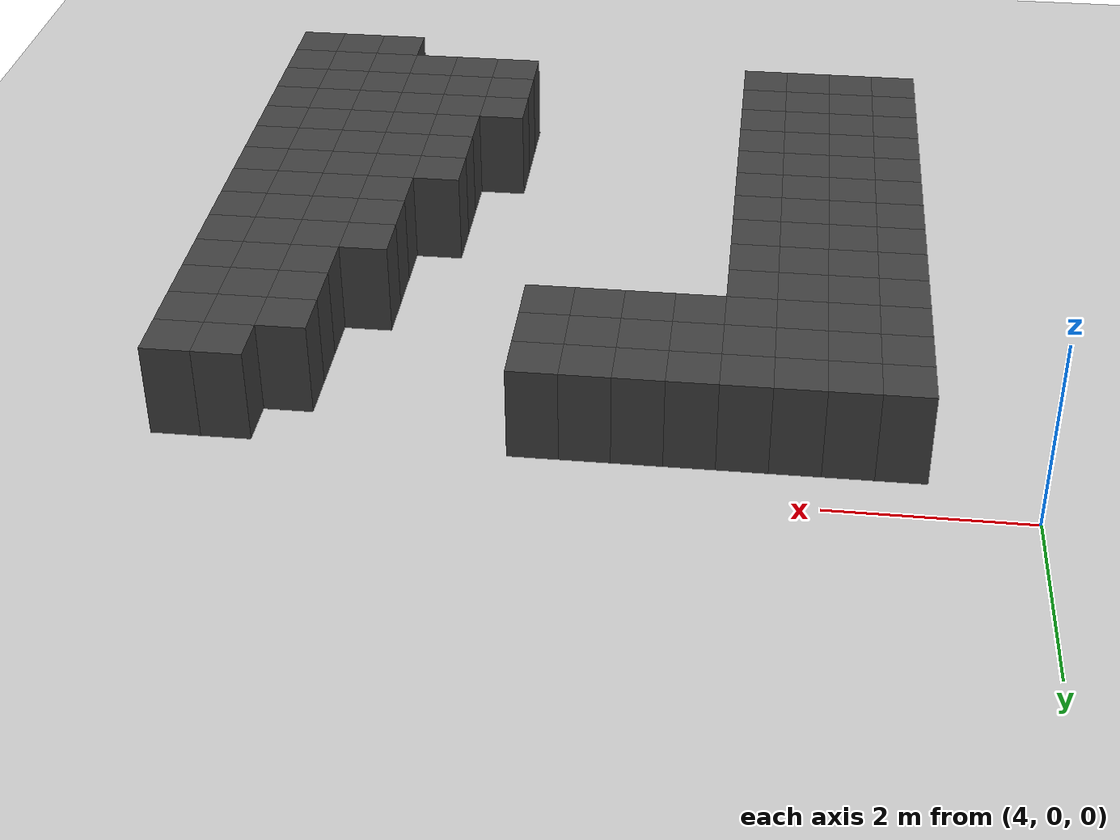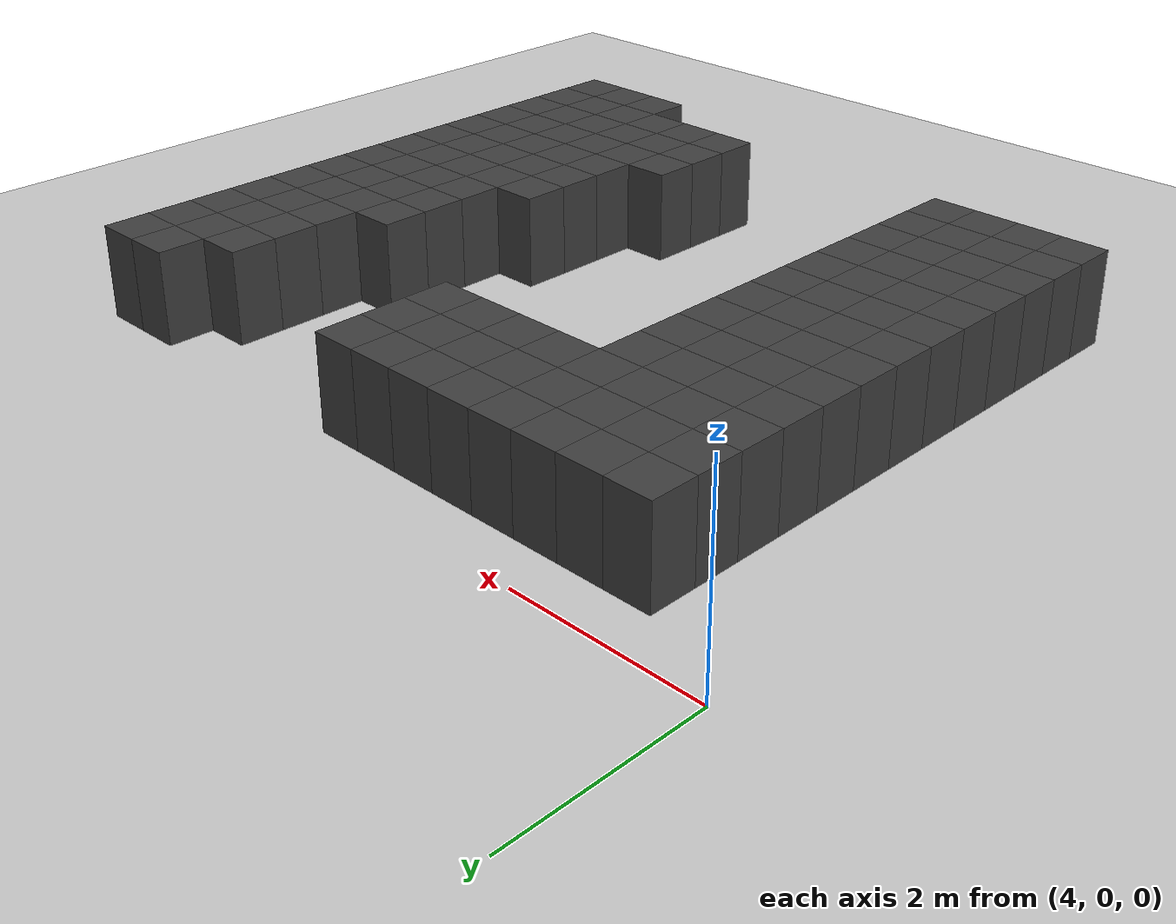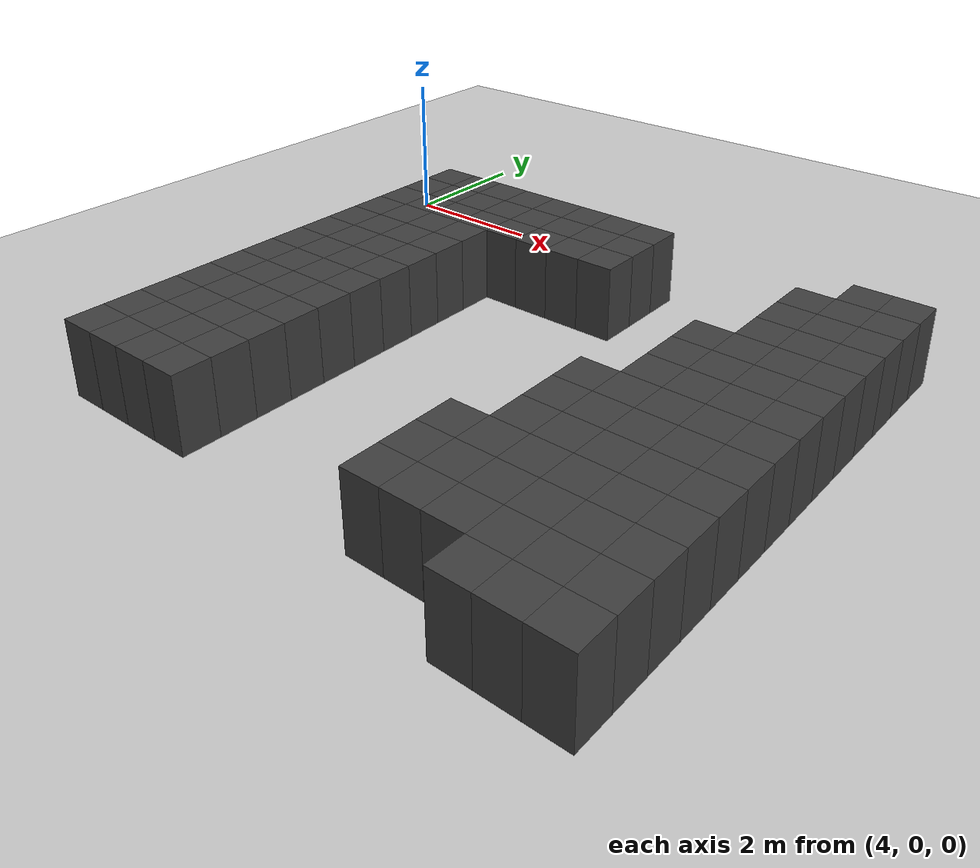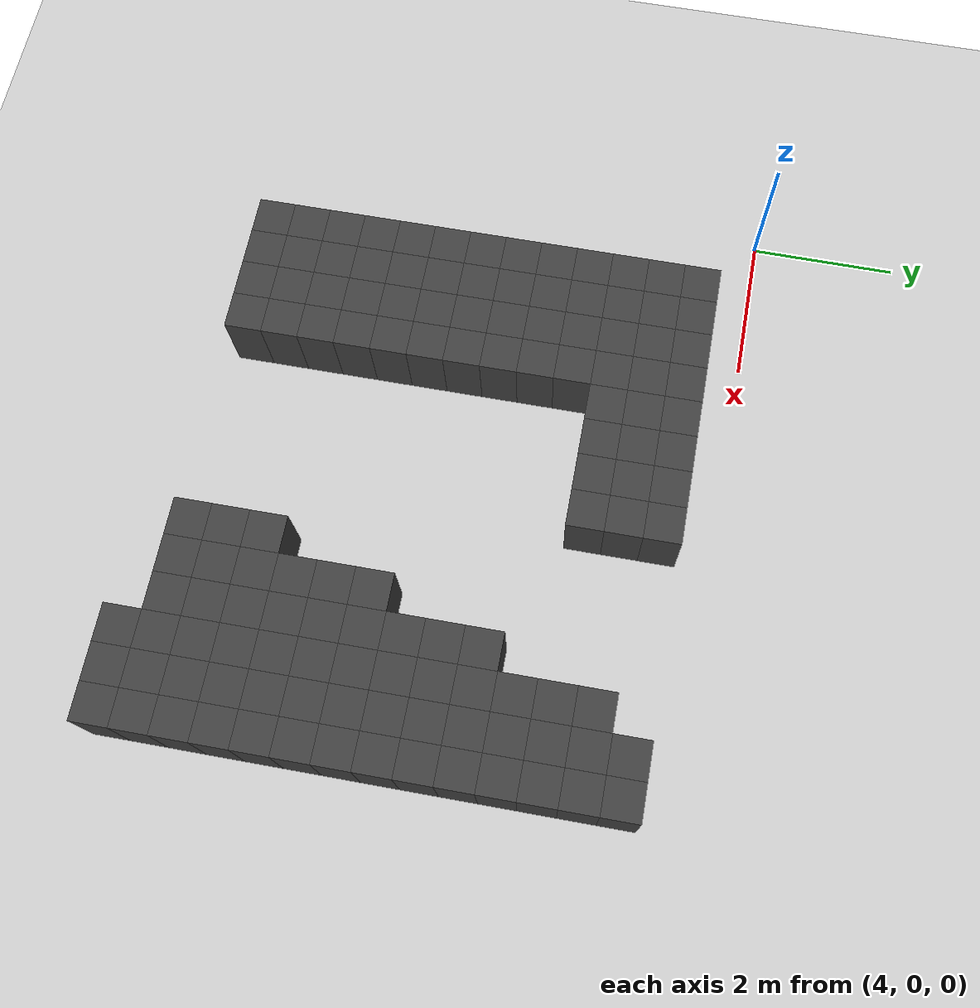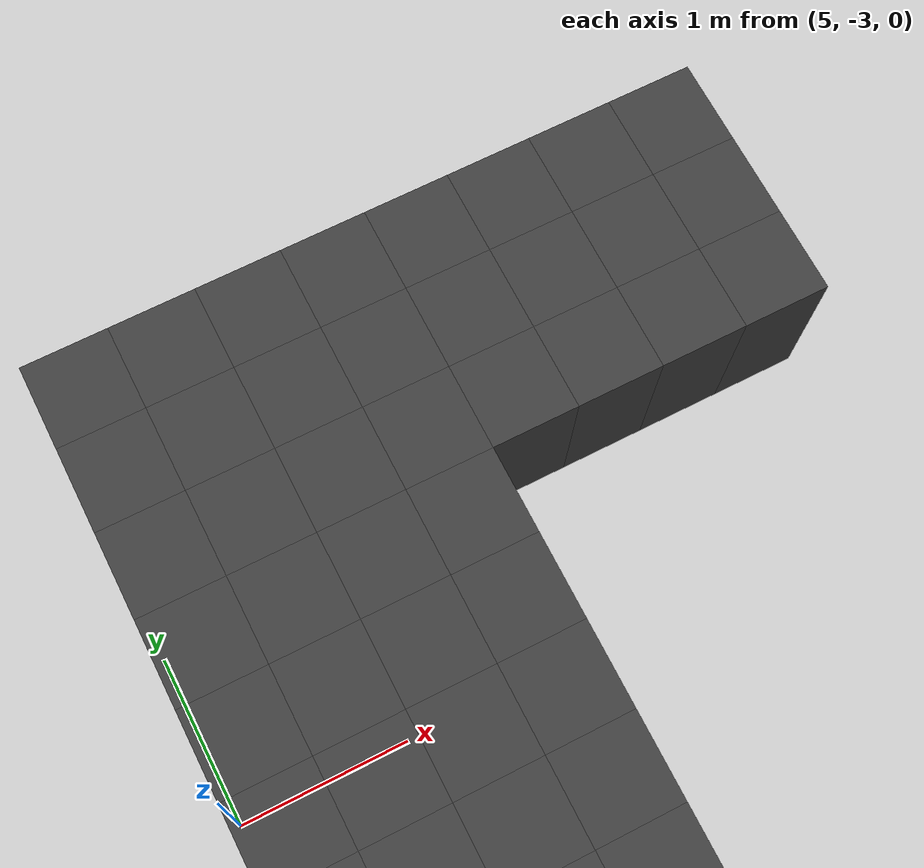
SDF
<sdf version="1.7">
 <world name="map_14074">
  <model name="ground_plane">
   <static>true</static>
   <link name="link">
    <collision name="collision">
     <geometry><plane><normal>0 0 1</normal><size>200 200</size></plane></geometry>
    </collision>
    <visual name="visual">
     <geometry><plane><normal>0 0 1</normal><size>200 200</size></plane></geometry>
     <material><ambient>0.8 0.8 0.8 1</ambient><diffuse>0.8 0.8 0.8 1</diffuse></material>
    </visual>
   </link>
  </model>
  <model name="maze_environment">
   <static>true</static>
   <link name="wall_1053">
    <pose>5.250 -0.750 0.500 0 0 0</pose>
    <collision name="col"><geometry><box><size>0.5 0.5 1.0</size></box></geometry></collision>
    <visual name="vis">
     <geometry><box><size>0.5 0.5 1.0</size></box></geometry>
     <material><ambient>0.15 0.15 0.15 1</ambient><diffuse>0.25 0.25 0.25 1</diffuse></material>
    </visual>
   </link>
   <link name="wall_1054">
    <pose>5.750 -0.750 0.500 0 0 0</pose>
    <collision name="col"><geometry><box><size>0.5 0.5 1.0</size></box></geometry></collision>
    <visual name="vis">
     <geometry><box><size>0.5 0.5 1.0</size></box></geometry>
     <material><ambient>0.15 0.15 0.15 1</ambient><diffuse>0.25 0.25 0.25 1</diffuse></material>
    </visual>
   </link>
   <link name="wall_1055">
    <pose>6.250 -0.750 0.500 0 0 0</pose>
    <collision name="col"><geometry><box><size>0.5 0.5 1.0</size></box></geometry></collision>
    <visual name="vis">
     <geometry><box><size>0.5 0.5 1.0</size></box></geometry>
     <material><ambient>0.15 0.15 0.15 1</ambient><diffuse>0.25 0.25 0.25 1</diffuse></material>
    </visual>
   </link>
   <link name="wall_1056">
    <pose>6.750 -0.750 0.500 0 0 0</pose>
    <collision name="col"><geometry><box><size>0.5 0.5 1.0</size></box></geometry></collision>
    <visual name="vis">
     <geometry><box><size>0.5 0.5 1.0</size></box></geometry>
     <material><ambient>0.15 0.15 0.15 1</ambient><diffuse>0.25 0.25 0.25 1</diffuse></material>
    </visual>
   </link>
   <link name="wall_1057">
    <pose>7.250 -0.750 0.500 0 0 0</pose>
    <collision name="col"><geometry><box><size>0.5 0.5 1.0</size></box></geometry></collision>
    <visual name="vis">
     <geometry><box><size>0.5 0.5 1.0</size></box></geometry>
     <material><ambient>0.15 0.15 0.15 1</ambient><diffuse>0.25 0.25 0.25 1</diffuse></material>
    </visual>
   </link>
   <link name="wall_1058">
    <pose>7.750 -0.750 0.500 0 0 0</pose>
    <collision name="col"><geometry><box><size>0.5 0.5 1.0</size></box></geometry></collision>
    <visual name="vis">
     <geometry><box><size>0.5 0.5 1.0</size></box></geometry>
     <material><ambient>0.15 0.15 0.15 1</ambient><diffuse>0.25 0.25 0.25 1</diffuse></material>
    </visual>
   </link>
   <link name="wall_1059">
    <pose>8.250 -0.750 0.500 0 0 0</pose>
    <collision name="col"><geometry><box><size>0.5 0.5 1.0</size></box></geometry></collision>
    <visual name="vis">
     <geometry><box><size>0.5 0.5 1.0</size></box></geometry>
     <material><ambient>0.15 0.15 0.15 1</ambient><diffuse>0.25 0.25 0.25 1</diffuse></material>
    </visual>
   </link>
   <link name="wall_1060">
    <pose>8.750 -0.750 0.500 0 0 0</pose>
    <collision name="col"><geometry><box><size>0.5 0.5 1.0</size></box></geometry></collision>
    <visual name="vis">
     <geometry><box><size>0.5 0.5 1.0</size></box></geometry>
     <material><ambient>0.15 0.15 0.15 1</ambient><diffuse>0.25 0.25 0.25 1</diffuse></material>
    </visual>
   </link>
   <link name="wall_1061">
    <pose>11.750 -0.750 0.500 0 0 0</pose>
    <collision name="col"><geometry><box><size>0.5 0.5 1.0</size></box></geometry></collision>
    <visual name="vis">
     <geometry><box><size>0.5 0.5 1.0</size></box></geometry>
     <material><ambient>0.15 0.15 0.15 1</ambient><diffuse>0.25 0.25 0.25 1</diffuse></material>
    </visual>
   </link>
   <link name="wall_1062">
    <pose>12.250 -0.750 0.500 0 0 0</pose>
    <collision name="col"><geometry><box><size>0.5 0.5 1.0</size></box></geometry></collision>
    <visual name="vis">
     <geometry><box><size>0.5 0.5 1.0</size></box></geometry>
     <material><ambient>0.15 0.15 0.15 1</ambient><diffuse>0.25 0.25 0.25 1</diffuse></material>
    </visual>
   </link>
   <link name="wall_1092">
    <pose>5.250 -1.250 0.500 0 0 0</pose>
    <collision name="col"><geometry><box><size>0.5 0.5 1.0</size></box></geometry></collision>
    <visual name="vis">
     <geometry><box><size>0.5 0.5 1.0</size></box></geometry>
     <material><ambient>0.15 0.15 0.15 1</ambient><diffuse>0.25 0.25 0.25 1</diffuse></material>
    </visual>
   </link>
   <link name="wall_1093">
    <pose>5.750 -1.250 0.500 0 0 0</pose>
    <collision name="col"><geometry><box><size>0.5 0.5 1.0</size></box></geometry></collision>
    <visual name="vis">
     <geometry><box><size>0.5 0.5 1.0</size></box></geometry>
     <material><ambient>0.15 0.15 0.15 1</ambient><diffuse>0.25 0.25 0.25 1</diffuse></material>
    </visual>
   </link>
   <link name="wall_1094">
    <pose>6.250 -1.250 0.500 0 0 0</pose>
    <collision name="col"><geometry><box><size>0.5 0.5 1.0</size></box></geometry></collision>
    <visual name="vis">
     <geometry><box><size>0.5 0.5 1.0</size></box></geometry>
     <material><ambient>0.15 0.15 0.15 1</ambient><diffuse>0.25 0.25 0.25 1</diffuse></material>
    </visual>
   </link>
   <link name="wall_1095">
    <pose>6.750 -1.250 0.500 0 0 0</pose>
    <collision name="col"><geometry><box><size>0.5 0.5 1.0</size></box></geometry></collision>
    <visual name="vis">
     <geometry><box><size>0.5 0.5 1.0</size></box></geometry>
     <material><ambient>0.15 0.15 0.15 1</ambient><diffuse>0.25 0.25 0.25 1</diffuse></material>
    </visual>
   </link>
   <link name="wall_1096">
    <pose>7.250 -1.250 0.500 0 0 0</pose>
    <collision name="col"><geometry><box><size>0.5 0.5 1.0</size></box></geometry></collision>
    <visual name="vis">
     <geometry><box><size>0.5 0.5 1.0</size></box></geometry>
     <material><ambient>0.15 0.15 0.15 1</ambient><diffuse>0.25 0.25 0.25 1</diffuse></material>
    </visual>
   </link>
   <link name="wall_1097">
    <pose>7.750 -1.250 0.500 0 0 0</pose>
    <collision name="col"><geometry><box><size>0.5 0.5 1.0</size></box></geometry></collision>
    <visual name="vis">
     <geometry><box><size>0.5 0.5 1.0</size></box></geometry>
     <material><ambient>0.15 0.15 0.15 1</ambient><diffuse>0.25 0.25 0.25 1</diffuse></material>
    </visual>
   </link>
   <link name="wall_1098">
    <pose>8.250 -1.250 0.500 0 0 0</pose>
    <collision name="col"><geometry><box><size>0.5 0.5 1.0</size></box></geometry></collision>
    <visual name="vis">
     <geometry><box><size>0.5 0.5 1.0</size></box></geometry>
     <material><ambient>0.15 0.15 0.15 1</ambient><diffuse>0.25 0.25 0.25 1</diffuse></material>
    </visual>
   </link>
   <link name="wall_1099">
    <pose>8.750 -1.250 0.500 0 0 0</pose>
    <collision name="col"><geometry><box><size>0.5 0.5 1.0</size></box></geometry></collision>
    <visual name="vis">
     <geometry><box><size>0.5 0.5 1.0</size></box></geometry>
     <material><ambient>0.15 0.15 0.15 1</ambient><diffuse>0.25 0.25 0.25 1</diffuse></material>
    </visual>
   </link>
   <link name="wall_1100">
    <pose>11.250 -1.250 0.500 0 0 0</pose>
    <collision name="col"><geometry><box><size>0.5 0.5 1.0</size></box></geometry></collision>
    <visual name="vis">
     <geometry><box><size>0.5 0.5 1.0</size></box></geometry>
     <material><ambient>0.15 0.15 0.15 1</ambient><diffuse>0.25 0.25 0.25 1</diffuse></material>
    </visual>
   </link>
   <link name="wall_1101">
    <pose>11.750 -1.250 0.500 0 0 0</pose>
    <collision name="col"><geometry><box><size>0.5 0.5 1.0</size></box></geometry></collision>
    <visual name="vis">
     <geometry><box><size>0.5 0.5 1.0</size></box></geometry>
     <material><ambient>0.15 0.15 0.15 1</ambient><diffuse>0.25 0.25 0.25 1</diffuse></material>
    </visual>
   </link>
   <link name="wall_1102">
    <pose>12.250 -1.250 0.500 0 0 0</pose>
    <collision name="col"><geometry><box><size>0.5 0.5 1.0</size></box></geometry></collision>
    <visual name="vis">
     <geometry><box><size>0.5 0.5 1.0</size></box></geometry>
     <material><ambient>0.15 0.15 0.15 1</ambient><diffuse>0.25 0.25 0.25 1</diffuse></material>
    </visual>
   </link>
   <link name="wall_1132">
    <pose>5.250 -1.750 0.500 0 0 0</pose>
    <collision name="col"><geometry><box><size>0.5 0.5 1.0</size></box></geometry></collision>
    <visual name="vis">
     <geometry><box><size>0.5 0.5 1.0</size></box></geometry>
     <material><ambient>0.15 0.15 0.15 1</ambient><diffuse>0.25 0.25 0.25 1</diffuse></material>
    </visual>
   </link>
   <link name="wall_1133">
    <pose>5.750 -1.750 0.500 0 0 0</pose>
    <collision name="col"><geometry><box><size>0.5 0.5 1.0</size></box></geometry></collision>
    <visual name="vis">
     <geometry><box><size>0.5 0.5 1.0</size></box></geometry>
     <material><ambient>0.15 0.15 0.15 1</ambient><diffuse>0.25 0.25 0.25 1</diffuse></material>
    </visual>
   </link>
   <link name="wall_1134">
    <pose>6.250 -1.750 0.500 0 0 0</pose>
    <collision name="col"><geometry><box><size>0.5 0.5 1.0</size></box></geometry></collision>
    <visual name="vis">
     <geometry><box><size>0.5 0.5 1.0</size></box></geometry>
     <material><ambient>0.15 0.15 0.15 1</ambient><diffuse>0.25 0.25 0.25 1</diffuse></material>
    </visual>
   </link>
   <link name="wall_1135">
    <pose>6.750 -1.750 0.500 0 0 0</pose>
    <collision name="col"><geometry><box><size>0.5 0.5 1.0</size></box></geometry></collision>
    <visual name="vis">
     <geometry><box><size>0.5 0.5 1.0</size></box></geometry>
     <material><ambient>0.15 0.15 0.15 1</ambient><diffuse>0.25 0.25 0.25 1</diffuse></material>
    </visual>
   </link>
   <link name="wall_1136">
    <pose>7.250 -1.750 0.500 0 0 0</pose>
    <collision name="col"><geometry><box><size>0.5 0.5 1.0</size></box></geometry></collision>
    <visual name="vis">
     <geometry><box><size>0.5 0.5 1.0</size></box></geometry>
     <material><ambient>0.15 0.15 0.15 1</ambient><diffuse>0.25 0.25 0.25 1</diffuse></material>
    </visual>
   </link>
   <link name="wall_1137">
    <pose>7.750 -1.750 0.500 0 0 0</pose>
    <collision name="col"><geometry><box><size>0.5 0.5 1.0</size></box></geometry></collision>
    <visual name="vis">
     <geometry><box><size>0.5 0.5 1.0</size></box></geometry>
     <material><ambient>0.15 0.15 0.15 1</ambient><diffuse>0.25 0.25 0.25 1</diffuse></material>
    </visual>
   </link>
   <link name="wall_1138">
    <pose>8.250 -1.750 0.500 0 0 0</pose>
    <collision name="col"><geometry><box><size>0.5 0.5 1.0</size></box></geometry></collision>
    <visual name="vis">
     <geometry><box><size>0.5 0.5 1.0</size></box></geometry>
     <material><ambient>0.15 0.15 0.15 1</ambient><diffuse>0.25 0.25 0.25 1</diffuse></material>
    </visual>
   </link>
   <link name="wall_1139">
    <pose>8.750 -1.750 0.500 0 0 0</pose>
    <collision name="col"><geometry><box><size>0.5 0.5 1.0</size></box></geometry></collision>
    <visual name="vis">
     <geometry><box><size>0.5 0.5 1.0</size></box></geometry>
     <material><ambient>0.15 0.15 0.15 1</ambient><diffuse>0.25 0.25 0.25 1</diffuse></material>
    </visual>
   </link>
   <link name="wall_1140">
    <pose>11.250 -1.750 0.500 0 0 0</pose>
    <collision name="col"><geometry><box><size>0.5 0.5 1.0</size></box></geometry></collision>
    <visual name="vis">
     <geometry><box><size>0.5 0.5 1.0</size></box></geometry>
     <material><ambient>0.15 0.15 0.15 1</ambient><diffuse>0.25 0.25 0.25 1</diffuse></material>
    </visual>
   </link>
   <link name="wall_1141">
    <pose>11.750 -1.750 0.500 0 0 0</pose>
    <collision name="col"><geometry><box><size>0.5 0.5 1.0</size></box></geometry></collision>
    <visual name="vis">
     <geometry><box><size>0.5 0.5 1.0</size></box></geometry>
     <material><ambient>0.15 0.15 0.15 1</ambient><diffuse>0.25 0.25 0.25 1</diffuse></material>
    </visual>
   </link>
   <link name="wall_1142">
    <pose>12.250 -1.750 0.500 0 0 0</pose>
    <collision name="col"><geometry><box><size>0.5 0.5 1.0</size></box></geometry></collision>
    <visual name="vis">
     <geometry><box><size>0.5 0.5 1.0</size></box></geometry>
     <material><ambient>0.15 0.15 0.15 1</ambient><diffuse>0.25 0.25 0.25 1</diffuse></material>
    </visual>
   </link>
   <link name="wall_1172">
    <pose>5.250 -2.250 0.500 0 0 0</pose>
    <collision name="col"><geometry><box><size>0.5 0.5 1.0</size></box></geometry></collision>
    <visual name="vis">
     <geometry><box><size>0.5 0.5 1.0</size></box></geometry>
     <material><ambient>0.15 0.15 0.15 1</ambient><diffuse>0.25 0.25 0.25 1</diffuse></material>
    </visual>
   </link>
   <link name="wall_1173">
    <pose>5.750 -2.250 0.500 0 0 0</pose>
    <collision name="col"><geometry><box><size>0.5 0.5 1.0</size></box></geometry></collision>
    <visual name="vis">
     <geometry><box><size>0.5 0.5 1.0</size></box></geometry>
     <material><ambient>0.15 0.15 0.15 1</ambient><diffuse>0.25 0.25 0.25 1</diffuse></material>
    </visual>
   </link>
   <link name="wall_1174">
    <pose>6.250 -2.250 0.500 0 0 0</pose>
    <collision name="col"><geometry><box><size>0.5 0.5 1.0</size></box></geometry></collision>
    <visual name="vis">
     <geometry><box><size>0.5 0.5 1.0</size></box></geometry>
     <material><ambient>0.15 0.15 0.15 1</ambient><diffuse>0.25 0.25 0.25 1</diffuse></material>
    </visual>
   </link>
   <link name="wall_1175">
    <pose>6.750 -2.250 0.500 0 0 0</pose>
    <collision name="col"><geometry><box><size>0.5 0.5 1.0</size></box></geometry></collision>
    <visual name="vis">
     <geometry><box><size>0.5 0.5 1.0</size></box></geometry>
     <material><ambient>0.15 0.15 0.15 1</ambient><diffuse>0.25 0.25 0.25 1</diffuse></material>
    </visual>
   </link>
   <link name="wall_1176">
    <pose>11.250 -2.250 0.500 0 0 0</pose>
    <collision name="col"><geometry><box><size>0.5 0.5 1.0</size></box></geometry></collision>
    <visual name="vis">
     <geometry><box><size>0.5 0.5 1.0</size></box></geometry>
     <material><ambient>0.15 0.15 0.15 1</ambient><diffuse>0.25 0.25 0.25 1</diffuse></material>
    </visual>
   </link>
   <link name="wall_1177">
    <pose>11.750 -2.250 0.500 0 0 0</pose>
    <collision name="col"><geometry><box><size>0.5 0.5 1.0</size></box></geometry></collision>
    <visual name="vis">
     <geometry><box><size>0.5 0.5 1.0</size></box></geometry>
     <material><ambient>0.15 0.15 0.15 1</ambient><diffuse>0.25 0.25 0.25 1</diffuse></material>
    </visual>
   </link>
   <link name="wall_1178">
    <pose>12.250 -2.250 0.500 0 0 0</pose>
    <collision name="col"><geometry><box><size>0.5 0.5 1.0</size></box></geometry></collision>
    <visual name="vis">
     <geometry><box><size>0.5 0.5 1.0</size></box></geometry>
     <material><ambient>0.15 0.15 0.15 1</ambient><diffuse>0.25 0.25 0.25 1</diffuse></material>
    </visual>
   </link>
   <link name="wall_1208">
    <pose>5.250 -2.750 0.500 0 0 0</pose>
    <collision name="col"><geometry><box><size>0.5 0.5 1.0</size></box></geometry></collision>
    <visual name="vis">
     <geometry><box><size>0.5 0.5 1.0</size></box></geometry>
     <material><ambient>0.15 0.15 0.15 1</ambient><diffuse>0.25 0.25 0.25 1</diffuse></material>
    </visual>
   </link>
   <link name="wall_1209">
    <pose>5.750 -2.750 0.500 0 0 0</pose>
    <collision name="col"><geometry><box><size>0.5 0.5 1.0</size></box></geometry></collision>
    <visual name="vis">
     <geometry><box><size>0.5 0.5 1.0</size></box></geometry>
     <material><ambient>0.15 0.15 0.15 1</ambient><diffuse>0.25 0.25 0.25 1</diffuse></material>
    </visual>
   </link>
   <link name="wall_1210">
    <pose>6.250 -2.750 0.500 0 0 0</pose>
    <collision name="col"><geometry><box><size>0.5 0.5 1.0</size></box></geometry></collision>
    <visual name="vis">
     <geometry><box><size>0.5 0.5 1.0</size></box></geometry>
     <material><ambient>0.15 0.15 0.15 1</ambient><diffuse>0.25 0.25 0.25 1</diffuse></material>
    </visual>
   </link>
   <link name="wall_1211">
    <pose>6.750 -2.750 0.500 0 0 0</pose>
    <collision name="col"><geometry><box><size>0.5 0.5 1.0</size></box></geometry></collision>
    <visual name="vis">
     <geometry><box><size>0.5 0.5 1.0</size></box></geometry>
     <material><ambient>0.15 0.15 0.15 1</ambient><diffuse>0.25 0.25 0.25 1</diffuse></material>
    </visual>
   </link>
   <link name="wall_1212">
    <pose>10.750 -2.750 0.500 0 0 0</pose>
    <collision name="col"><geometry><box><size>0.5 0.5 1.0</size></box></geometry></collision>
    <visual name="vis">
     <geometry><box><size>0.5 0.5 1.0</size></box></geometry>
     <material><ambient>0.15 0.15 0.15 1</ambient><diffuse>0.25 0.25 0.25 1</diffuse></material>
    </visual>
   </link>
   <link name="wall_1213">
    <pose>11.250 -2.750 0.500 0 0 0</pose>
    <collision name="col"><geometry><box><size>0.5 0.5 1.0</size></box></geometry></collision>
    <visual name="vis">
     <geometry><box><size>0.5 0.5 1.0</size></box></geometry>
     <material><ambient>0.15 0.15 0.15 1</ambient><diffuse>0.25 0.25 0.25 1</diffuse></material>
    </visual>
   </link>
   <link name="wall_1214">
    <pose>11.750 -2.750 0.500 0 0 0</pose>
    <collision name="col"><geometry><box><size>0.5 0.5 1.0</size></box></geometry></collision>
    <visual name="vis">
     <geometry><box><size>0.5 0.5 1.0</size></box></geometry>
     <material><ambient>0.15 0.15 0.15 1</ambient><diffuse>0.25 0.25 0.25 1</diffuse></material>
    </visual>
   </link>
   <link name="wall_1215">
    <pose>12.250 -2.750 0.500 0 0 0</pose>
    <collision name="col"><geometry><box><size>0.5 0.5 1.0</size></box></geometry></collision>
    <visual name="vis">
     <geometry><box><size>0.5 0.5 1.0</size></box></geometry>
     <material><ambient>0.15 0.15 0.15 1</ambient><diffuse>0.25 0.25 0.25 1</diffuse></material>
    </visual>
   </link>
   <link name="wall_1238">
    <pose>5.250 -3.250 0.500 0 0 0</pose>
    <collision name="col"><geometry><box><size>0.5 0.5 1.0</size></box></geometry></collision>
    <visual name="vis">
     <geometry><box><size>0.5 0.5 1.0</size></box></geometry>
     <material><ambient>0.15 0.15 0.15 1</ambient><diffuse>0.25 0.25 0.25 1</diffuse></material>
    </visual>
   </link>
   <link name="wall_1239">
    <pose>5.750 -3.250 0.500 0 0 0</pose>
    <collision name="col"><geometry><box><size>0.5 0.5 1.0</size></box></geometry></collision>
    <visual name="vis">
     <geometry><box><size>0.5 0.5 1.0</size></box></geometry>
     <material><ambient>0.15 0.15 0.15 1</ambient><diffuse>0.25 0.25 0.25 1</diffuse></material>
    </visual>
   </link>
   <link name="wall_1240">
    <pose>6.250 -3.250 0.500 0 0 0</pose>
    <collision name="col"><geometry><box><size>0.5 0.5 1.0</size></box></geometry></collision>
    <visual name="vis">
     <geometry><box><size>0.5 0.5 1.0</size></box></geometry>
     <material><ambient>0.15 0.15 0.15 1</ambient><diffuse>0.25 0.25 0.25 1</diffuse></material>
    </visual>
   </link>
   <link name="wall_1241">
    <pose>6.750 -3.250 0.500 0 0 0</pose>
    <collision name="col"><geometry><box><size>0.5 0.5 1.0</size></box></geometry></collision>
    <visual name="vis">
     <geometry><box><size>0.5 0.5 1.0</size></box></geometry>
     <material><ambient>0.15 0.15 0.15 1</ambient><diffuse>0.25 0.25 0.25 1</diffuse></material>
    </visual>
   </link>
   <link name="wall_1242">
    <pose>10.750 -3.250 0.500 0 0 0</pose>
    <collision name="col"><geometry><box><size>0.5 0.5 1.0</size></box></geometry></collision>
    <visual name="vis">
     <geometry><box><size>0.5 0.5 1.0</size></box></geometry>
     <material><ambient>0.15 0.15 0.15 1</ambient><diffuse>0.25 0.25 0.25 1</diffuse></material>
    </visual>
   </link>
   <link name="wall_1243">
    <pose>11.250 -3.250 0.500 0 0 0</pose>
    <collision name="col"><geometry><box><size>0.5 0.5 1.0</size></box></geometry></collision>
    <visual name="vis">
     <geometry><box><size>0.5 0.5 1.0</size></box></geometry>
     <material><ambient>0.15 0.15 0.15 1</ambient><diffuse>0.25 0.25 0.25 1</diffuse></material>
    </visual>
   </link>
   <link name="wall_1244">
    <pose>11.750 -3.250 0.500 0 0 0</pose>
    <collision name="col"><geometry><box><size>0.5 0.5 1.0</size></box></geometry></collision>
    <visual name="vis">
     <geometry><box><size>0.5 0.5 1.0</size></box></geometry>
     <material><ambient>0.15 0.15 0.15 1</ambient><diffuse>0.25 0.25 0.25 1</diffuse></material>
    </visual>
   </link>
   <link name="wall_1245">
    <pose>12.250 -3.250 0.500 0 0 0</pose>
    <collision name="col"><geometry><box><size>0.5 0.5 1.0</size></box></geometry></collision>
    <visual name="vis">
     <geometry><box><size>0.5 0.5 1.0</size></box></geometry>
     <material><ambient>0.15 0.15 0.15 1</ambient><diffuse>0.25 0.25 0.25 1</diffuse></material>
    </visual>
   </link>
   <link name="wall_1268">
    <pose>5.250 -3.750 0.500 0 0 0</pose>
    <collision name="col"><geometry><box><size>0.5 0.5 1.0</size></box></geometry></collision>
    <visual name="vis">
     <geometry><box><size>0.5 0.5 1.0</size></box></geometry>
     <material><ambient>0.15 0.15 0.15 1</ambient><diffuse>0.25 0.25 0.25 1</diffuse></material>
    </visual>
   </link>
   <link name="wall_1269">
    <pose>5.750 -3.750 0.500 0 0 0</pose>
    <collision name="col"><geometry><box><size>0.5 0.5 1.0</size></box></geometry></collision>
    <visual name="vis">
     <geometry><box><size>0.5 0.5 1.0</size></box></geometry>
     <material><ambient>0.15 0.15 0.15 1</ambient><diffuse>0.25 0.25 0.25 1</diffuse></material>
    </visual>
   </link>
   <link name="wall_1270">
    <pose>6.250 -3.750 0.500 0 0 0</pose>
    <collision name="col"><geometry><box><size>0.5 0.5 1.0</size></box></geometry></collision>
    <visual name="vis">
     <geometry><box><size>0.5 0.5 1.0</size></box></geometry>
     <material><ambient>0.15 0.15 0.15 1</ambient><diffuse>0.25 0.25 0.25 1</diffuse></material>
    </visual>
   </link>
   <link name="wall_1271">
    <pose>6.750 -3.750 0.500 0 0 0</pose>
    <collision name="col"><geometry><box><size>0.5 0.5 1.0</size></box></geometry></collision>
    <visual name="vis">
     <geometry><box><size>0.5 0.5 1.0</size></box></geometry>
     <material><ambient>0.15 0.15 0.15 1</ambient><diffuse>0.25 0.25 0.25 1</diffuse></material>
    </visual>
   </link>
   <link name="wall_1272">
    <pose>10.750 -3.750 0.500 0 0 0</pose>
    <collision name="col"><geometry><box><size>0.5 0.5 1.0</size></box></geometry></collision>
    <visual name="vis">
     <geometry><box><size>0.5 0.5 1.0</size></box></geometry>
     <material><ambient>0.15 0.15 0.15 1</ambient><diffuse>0.25 0.25 0.25 1</diffuse></material>
    </visual>
   </link>
   <link name="wall_1273">
    <pose>11.250 -3.750 0.500 0 0 0</pose>
    <collision name="col"><geometry><box><size>0.5 0.5 1.0</size></box></geometry></collision>
    <visual name="vis">
     <geometry><box><size>0.5 0.5 1.0</size></box></geometry>
     <material><ambient>0.15 0.15 0.15 1</ambient><diffuse>0.25 0.25 0.25 1</diffuse></material>
    </visual>
   </link>
   <link name="wall_1274">
    <pose>11.750 -3.750 0.500 0 0 0</pose>
    <collision name="col"><geometry><box><size>0.5 0.5 1.0</size></box></geometry></collision>
    <visual name="vis">
     <geometry><box><size>0.5 0.5 1.0</size></box></geometry>
     <material><ambient>0.15 0.15 0.15 1</ambient><diffuse>0.25 0.25 0.25 1</diffuse></material>
    </visual>
   </link>
   <link name="wall_1275">
    <pose>12.250 -3.750 0.500 0 0 0</pose>
    <collision name="col"><geometry><box><size>0.5 0.5 1.0</size></box></geometry></collision>
    <visual name="vis">
     <geometry><box><size>0.5 0.5 1.0</size></box></geometry>
     <material><ambient>0.15 0.15 0.15 1</ambient><diffuse>0.25 0.25 0.25 1</diffuse></material>
    </visual>
   </link>
   <link name="wall_1297">
    <pose>5.250 -4.250 0.500 0 0 0</pose>
    <collision name="col"><geometry><box><size>0.5 0.5 1.0</size></box></geometry></collision>
    <visual name="vis">
     <geometry><box><size>0.5 0.5 1.0</size></box></geometry>
     <material><ambient>0.15 0.15 0.15 1</ambient><diffuse>0.25 0.25 0.25 1</diffuse></material>
    </visual>
   </link>
   <link name="wall_1298">
    <pose>5.750 -4.250 0.500 0 0 0</pose>
    <collision name="col"><geometry><box><size>0.5 0.5 1.0</size></box></geometry></collision>
    <visual name="vis">
     <geometry><box><size>0.5 0.5 1.0</size></box></geometry>
     <material><ambient>0.15 0.15 0.15 1</ambient><diffuse>0.25 0.25 0.25 1</diffuse></material>
    </visual>
   </link>
   <link name="wall_1299">
    <pose>6.250 -4.250 0.500 0 0 0</pose>
    <collision name="col"><geometry><box><size>0.5 0.5 1.0</size></box></geometry></collision>
    <visual name="vis">
     <geometry><box><size>0.5 0.5 1.0</size></box></geometry>
     <material><ambient>0.15 0.15 0.15 1</ambient><diffuse>0.25 0.25 0.25 1</diffuse></material>
    </visual>
   </link>
   <link name="wall_1300">
    <pose>6.750 -4.250 0.500 0 0 0</pose>
    <collision name="col"><geometry><box><size>0.5 0.5 1.0</size></box></geometry></collision>
    <visual name="vis">
     <geometry><box><size>0.5 0.5 1.0</size></box></geometry>
     <material><ambient>0.15 0.15 0.15 1</ambient><diffuse>0.25 0.25 0.25 1</diffuse></material>
    </visual>
   </link>
   <link name="wall_1301">
    <pose>10.250 -4.250 0.500 0 0 0</pose>
    <collision name="col"><geometry><box><size>0.5 0.5 1.0</size></box></geometry></collision>
    <visual name="vis">
     <geometry><box><size>0.5 0.5 1.0</size></box></geometry>
     <material><ambient>0.15 0.15 0.15 1</ambient><diffuse>0.25 0.25 0.25 1</diffuse></material>
    </visual>
   </link>
   <link name="wall_1302">
    <pose>10.750 -4.250 0.500 0 0 0</pose>
    <collision name="col"><geometry><box><size>0.5 0.5 1.0</size></box></geometry></collision>
    <visual name="vis">
     <geometry><box><size>0.5 0.5 1.0</size></box></geometry>
     <material><ambient>0.15 0.15 0.15 1</ambient><diffuse>0.25 0.25 0.25 1</diffuse></material>
    </visual>
   </link>
   <link name="wall_1303">
    <pose>11.250 -4.250 0.500 0 0 0</pose>
    <collision name="col"><geometry><box><size>0.5 0.5 1.0</size></box></geometry></collision>
    <visual name="vis">
     <geometry><box><size>0.5 0.5 1.0</size></box></geometry>
     <material><ambient>0.15 0.15 0.15 1</ambient><diffuse>0.25 0.25 0.25 1</diffuse></material>
    </visual>
   </link>
   <link name="wall_1304">
    <pose>11.750 -4.250 0.500 0 0 0</pose>
    <collision name="col"><geometry><box><size>0.5 0.5 1.0</size></box></geometry></collision>
    <visual name="vis">
     <geometry><box><size>0.5 0.5 1.0</size></box></geometry>
     <material><ambient>0.15 0.15 0.15 1</ambient><diffuse>0.25 0.25 0.25 1</diffuse></material>
    </visual>
   </link>
   <link name="wall_1305">
    <pose>12.250 -4.250 0.500 0 0 0</pose>
    <collision name="col"><geometry><box><size>0.5 0.5 1.0</size></box></geometry></collision>
    <visual name="vis">
     <geometry><box><size>0.5 0.5 1.0</size></box></geometry>
     <material><ambient>0.15 0.15 0.15 1</ambient><diffuse>0.25 0.25 0.25 1</diffuse></material>
    </visual>
   </link>
   <link name="wall_1325">
    <pose>5.250 -4.750 0.500 0 0 0</pose>
    <collision name="col"><geometry><box><size>0.5 0.5 1.0</size></box></geometry></collision>
    <visual name="vis">
     <geometry><box><size>0.5 0.5 1.0</size></box></geometry>
     <material><ambient>0.15 0.15 0.15 1</ambient><diffuse>0.25 0.25 0.25 1</diffuse></material>
    </visual>
   </link>
   <link name="wall_1326">
    <pose>5.750 -4.750 0.500 0 0 0</pose>
    <collision name="col"><geometry><box><size>0.5 0.5 1.0</size></box></geometry></collision>
    <visual name="vis">
     <geometry><box><size>0.5 0.5 1.0</size></box></geometry>
     <material><ambient>0.15 0.15 0.15 1</ambient><diffuse>0.25 0.25 0.25 1</diffuse></material>
    </visual>
   </link>
   <link name="wall_1327">
    <pose>6.250 -4.750 0.500 0 0 0</pose>
    <collision name="col"><geometry><box><size>0.5 0.5 1.0</size></box></geometry></collision>
    <visual name="vis">
     <geometry><box><size>0.5 0.5 1.0</size></box></geometry>
     <material><ambient>0.15 0.15 0.15 1</ambient><diffuse>0.25 0.25 0.25 1</diffuse></material>
    </visual>
   </link>
   <link name="wall_1328">
    <pose>6.750 -4.750 0.500 0 0 0</pose>
    <collision name="col"><geometry><box><size>0.5 0.5 1.0</size></box></geometry></collision>
    <visual name="vis">
     <geometry><box><size>0.5 0.5 1.0</size></box></geometry>
     <material><ambient>0.15 0.15 0.15 1</ambient><diffuse>0.25 0.25 0.25 1</diffuse></material>
    </visual>
   </link>
   <link name="wall_1329">
    <pose>10.250 -4.750 0.500 0 0 0</pose>
    <collision name="col"><geometry><box><size>0.5 0.5 1.0</size></box></geometry></collision>
    <visual name="vis">
     <geometry><box><size>0.5 0.5 1.0</size></box></geometry>
     <material><ambient>0.15 0.15 0.15 1</ambient><diffuse>0.25 0.25 0.25 1</diffuse></material>
    </visual>
   </link>
   <link name="wall_1330">
    <pose>10.750 -4.750 0.500 0 0 0</pose>
    <collision name="col"><geometry><box><size>0.5 0.5 1.0</size></box></geometry></collision>
    <visual name="vis">
     <geometry><box><size>0.5 0.5 1.0</size></box></geometry>
     <material><ambient>0.15 0.15 0.15 1</ambient><diffuse>0.25 0.25 0.25 1</diffuse></material>
    </visual>
   </link>
   <link name="wall_1331">
    <pose>11.250 -4.750 0.500 0 0 0</pose>
    <collision name="col"><geometry><box><size>0.5 0.5 1.0</size></box></geometry></collision>
    <visual name="vis">
     <geometry><box><size>0.5 0.5 1.0</size></box></geometry>
     <material><ambient>0.15 0.15 0.15 1</ambient><diffuse>0.25 0.25 0.25 1</diffuse></material>
    </visual>
   </link>
   <link name="wall_1332">
    <pose>11.750 -4.750 0.500 0 0 0</pose>
    <collision name="col"><geometry><box><size>0.5 0.5 1.0</size></box></geometry></collision>
    <visual name="vis">
     <geometry><box><size>0.5 0.5 1.0</size></box></geometry>
     <material><ambient>0.15 0.15 0.15 1</ambient><diffuse>0.25 0.25 0.25 1</diffuse></material>
    </visual>
   </link>
   <link name="wall_1333">
    <pose>12.250 -4.750 0.500 0 0 0</pose>
    <collision name="col"><geometry><box><size>0.5 0.5 1.0</size></box></geometry></collision>
    <visual name="vis">
     <geometry><box><size>0.5 0.5 1.0</size></box></geometry>
     <material><ambient>0.15 0.15 0.15 1</ambient><diffuse>0.25 0.25 0.25 1</diffuse></material>
    </visual>
   </link>
   <link name="wall_1346">
    <pose>5.250 -5.250 0.500 0 0 0</pose>
    <collision name="col"><geometry><box><size>0.5 0.5 1.0</size></box></geometry></collision>
    <visual name="vis">
     <geometry><box><size>0.5 0.5 1.0</size></box></geometry>
     <material><ambient>0.15 0.15 0.15 1</ambient><diffuse>0.25 0.25 0.25 1</diffuse></material>
    </visual>
   </link>
   <link name="wall_1347">
    <pose>5.750 -5.250 0.500 0 0 0</pose>
    <collision name="col"><geometry><box><size>0.5 0.5 1.0</size></box></geometry></collision>
    <visual name="vis">
     <geometry><box><size>0.5 0.5 1.0</size></box></geometry>
     <material><ambient>0.15 0.15 0.15 1</ambient><diffuse>0.25 0.25 0.25 1</diffuse></material>
    </visual>
   </link>
   <link name="wall_1348">
    <pose>6.250 -5.250 0.500 0 0 0</pose>
    <collision name="col"><geometry><box><size>0.5 0.5 1.0</size></box></geometry></collision>
    <visual name="vis">
     <geometry><box><size>0.5 0.5 1.0</size></box></geometry>
     <material><ambient>0.15 0.15 0.15 1</ambient><diffuse>0.25 0.25 0.25 1</diffuse></material>
    </visual>
   </link>
   <link name="wall_1349">
    <pose>6.750 -5.250 0.500 0 0 0</pose>
    <collision name="col"><geometry><box><size>0.5 0.5 1.0</size></box></geometry></collision>
    <visual name="vis">
     <geometry><box><size>0.5 0.5 1.0</size></box></geometry>
     <material><ambient>0.15 0.15 0.15 1</ambient><diffuse>0.25 0.25 0.25 1</diffuse></material>
    </visual>
   </link>
   <link name="wall_1350">
    <pose>10.250 -5.250 0.500 0 0 0</pose>
    <collision name="col"><geometry><box><size>0.5 0.5 1.0</size></box></geometry></collision>
    <visual name="vis">
     <geometry><box><size>0.5 0.5 1.0</size></box></geometry>
     <material><ambient>0.15 0.15 0.15 1</ambient><diffuse>0.25 0.25 0.25 1</diffuse></material>
    </visual>
   </link>
   <link name="wall_1351">
    <pose>10.750 -5.250 0.500 0 0 0</pose>
    <collision name="col"><geometry><box><size>0.5 0.5 1.0</size></box></geometry></collision>
    <visual name="vis">
     <geometry><box><size>0.5 0.5 1.0</size></box></geometry>
     <material><ambient>0.15 0.15 0.15 1</ambient><diffuse>0.25 0.25 0.25 1</diffuse></material>
    </visual>
   </link>
   <link name="wall_1352">
    <pose>11.250 -5.250 0.500 0 0 0</pose>
    <collision name="col"><geometry><box><size>0.5 0.5 1.0</size></box></geometry></collision>
    <visual name="vis">
     <geometry><box><size>0.5 0.5 1.0</size></box></geometry>
     <material><ambient>0.15 0.15 0.15 1</ambient><diffuse>0.25 0.25 0.25 1</diffuse></material>
    </visual>
   </link>
   <link name="wall_1353">
    <pose>11.750 -5.250 0.500 0 0 0</pose>
    <collision name="col"><geometry><box><size>0.5 0.5 1.0</size></box></geometry></collision>
    <visual name="vis">
     <geometry><box><size>0.5 0.5 1.0</size></box></geometry>
     <material><ambient>0.15 0.15 0.15 1</ambient><diffuse>0.25 0.25 0.25 1</diffuse></material>
    </visual>
   </link>
   <link name="wall_1354">
    <pose>12.250 -5.250 0.500 0 0 0</pose>
    <collision name="col"><geometry><box><size>0.5 0.5 1.0</size></box></geometry></collision>
    <visual name="vis">
     <geometry><box><size>0.5 0.5 1.0</size></box></geometry>
     <material><ambient>0.15 0.15 0.15 1</ambient><diffuse>0.25 0.25 0.25 1</diffuse></material>
    </visual>
   </link>
   <link name="wall_1367">
    <pose>5.250 -5.750 0.500 0 0 0</pose>
    <collision name="col"><geometry><box><size>0.5 0.5 1.0</size></box></geometry></collision>
    <visual name="vis">
     <geometry><box><size>0.5 0.5 1.0</size></box></geometry>
     <material><ambient>0.15 0.15 0.15 1</ambient><diffuse>0.25 0.25 0.25 1</diffuse></material>
    </visual>
   </link>
   <link name="wall_1368">
    <pose>5.750 -5.750 0.500 0 0 0</pose>
    <collision name="col"><geometry><box><size>0.5 0.5 1.0</size></box></geometry></collision>
    <visual name="vis">
     <geometry><box><size>0.5 0.5 1.0</size></box></geometry>
     <material><ambient>0.15 0.15 0.15 1</ambient><diffuse>0.25 0.25 0.25 1</diffuse></material>
    </visual>
   </link>
   <link name="wall_1369">
    <pose>6.250 -5.750 0.500 0 0 0</pose>
    <collision name="col"><geometry><box><size>0.5 0.5 1.0</size></box></geometry></collision>
    <visual name="vis">
     <geometry><box><size>0.5 0.5 1.0</size></box></geometry>
     <material><ambient>0.15 0.15 0.15 1</ambient><diffuse>0.25 0.25 0.25 1</diffuse></material>
    </visual>
   </link>
   <link name="wall_1370">
    <pose>6.750 -5.750 0.500 0 0 0</pose>
    <collision name="col"><geometry><box><size>0.5 0.5 1.0</size></box></geometry></collision>
    <visual name="vis">
     <geometry><box><size>0.5 0.5 1.0</size></box></geometry>
     <material><ambient>0.15 0.15 0.15 1</ambient><diffuse>0.25 0.25 0.25 1</diffuse></material>
    </visual>
   </link>
   <link name="wall_1371">
    <pose>9.750 -5.750 0.500 0 0 0</pose>
    <collision name="col"><geometry><box><size>0.5 0.5 1.0</size></box></geometry></collision>
    <visual name="vis">
     <geometry><box><size>0.5 0.5 1.0</size></box></geometry>
     <material><ambient>0.15 0.15 0.15 1</ambient><diffuse>0.25 0.25 0.25 1</diffuse></material>
    </visual>
   </link>
   <link name="wall_1372">
    <pose>10.250 -5.750 0.500 0 0 0</pose>
    <collision name="col"><geometry><box><size>0.5 0.5 1.0</size></box></geometry></collision>
    <visual name="vis">
     <geometry><box><size>0.5 0.5 1.0</size></box></geometry>
     <material><ambient>0.15 0.15 0.15 1</ambient><diffuse>0.25 0.25 0.25 1</diffuse></material>
    </visual>
   </link>
   <link name="wall_1373">
    <pose>10.750 -5.750 0.500 0 0 0</pose>
    <collision name="col"><geometry><box><size>0.5 0.5 1.0</size></box></geometry></collision>
    <visual name="vis">
     <geometry><box><size>0.5 0.5 1.0</size></box></geometry>
     <material><ambient>0.15 0.15 0.15 1</ambient><diffuse>0.25 0.25 0.25 1</diffuse></material>
    </visual>
   </link>
   <link name="wall_1374">
    <pose>11.250 -5.750 0.500 0 0 0</pose>
    <collision name="col"><geometry><box><size>0.5 0.5 1.0</size></box></geometry></collision>
    <visual name="vis">
     <geometry><box><size>0.5 0.5 1.0</size></box></geometry>
     <material><ambient>0.15 0.15 0.15 1</ambient><diffuse>0.25 0.25 0.25 1</diffuse></material>
    </visual>
   </link>
   <link name="wall_1375">
    <pose>11.750 -5.750 0.500 0 0 0</pose>
    <collision name="col"><geometry><box><size>0.5 0.5 1.0</size></box></geometry></collision>
    <visual name="vis">
     <geometry><box><size>0.5 0.5 1.0</size></box></geometry>
     <material><ambient>0.15 0.15 0.15 1</ambient><diffuse>0.25 0.25 0.25 1</diffuse></material>
    </visual>
   </link>
   <link name="wall_1376">
    <pose>12.250 -5.750 0.500 0 0 0</pose>
    <collision name="col"><geometry><box><size>0.5 0.5 1.0</size></box></geometry></collision>
    <visual name="vis">
     <geometry><box><size>0.5 0.5 1.0</size></box></geometry>
     <material><ambient>0.15 0.15 0.15 1</ambient><diffuse>0.25 0.25 0.25 1</diffuse></material>
    </visual>
   </link>
   <link name="wall_1394">
    <pose>5.250 -6.250 0.500 0 0 0</pose>
    <collision name="col"><geometry><box><size>0.5 0.5 1.0</size></box></geometry></collision>
    <visual name="vis">
     <geometry><box><size>0.5 0.5 1.0</size></box></geometry>
     <material><ambient>0.15 0.15 0.15 1</ambient><diffuse>0.25 0.25 0.25 1</diffuse></material>
    </visual>
   </link>
   <link name="wall_1395">
    <pose>5.750 -6.250 0.500 0 0 0</pose>
    <collision name="col"><geometry><box><size>0.5 0.5 1.0</size></box></geometry></collision>
    <visual name="vis">
     <geometry><box><size>0.5 0.5 1.0</size></box></geometry>
     <material><ambient>0.15 0.15 0.15 1</ambient><diffuse>0.25 0.25 0.25 1</diffuse></material>
    </visual>
   </link>
   <link name="wall_1396">
    <pose>6.250 -6.250 0.500 0 0 0</pose>
    <collision name="col"><geometry><box><size>0.5 0.5 1.0</size></box></geometry></collision>
    <visual name="vis">
     <geometry><box><size>0.5 0.5 1.0</size></box></geometry>
     <material><ambient>0.15 0.15 0.15 1</ambient><diffuse>0.25 0.25 0.25 1</diffuse></material>
    </visual>
   </link>
   <link name="wall_1397">
    <pose>6.750 -6.250 0.500 0 0 0</pose>
    <collision name="col"><geometry><box><size>0.5 0.5 1.0</size></box></geometry></collision>
    <visual name="vis">
     <geometry><box><size>0.5 0.5 1.0</size></box></geometry>
     <material><ambient>0.15 0.15 0.15 1</ambient><diffuse>0.25 0.25 0.25 1</diffuse></material>
    </visual>
   </link>
   <link name="wall_1398">
    <pose>9.750 -6.250 0.500 0 0 0</pose>
    <collision name="col"><geometry><box><size>0.5 0.5 1.0</size></box></geometry></collision>
    <visual name="vis">
     <geometry><box><size>0.5 0.5 1.0</size></box></geometry>
     <material><ambient>0.15 0.15 0.15 1</ambient><diffuse>0.25 0.25 0.25 1</diffuse></material>
    </visual>
   </link>
   <link name="wall_1399">
    <pose>10.250 -6.250 0.500 0 0 0</pose>
    <collision name="col"><geometry><box><size>0.5 0.5 1.0</size></box></geometry></collision>
    <visual name="vis">
     <geometry><box><size>0.5 0.5 1.0</size></box></geometry>
     <material><ambient>0.15 0.15 0.15 1</ambient><diffuse>0.25 0.25 0.25 1</diffuse></material>
    </visual>
   </link>
   <link name="wall_1400">
    <pose>10.750 -6.250 0.500 0 0 0</pose>
    <collision name="col"><geometry><box><size>0.5 0.5 1.0</size></box></geometry></collision>
    <visual name="vis">
     <geometry><box><size>0.5 0.5 1.0</size></box></geometry>
     <material><ambient>0.15 0.15 0.15 1</ambient><diffuse>0.25 0.25 0.25 1</diffuse></material>
    </visual>
   </link>
   <link name="wall_1401">
    <pose>11.250 -6.250 0.500 0 0 0</pose>
    <collision name="col"><geometry><box><size>0.5 0.5 1.0</size></box></geometry></collision>
    <visual name="vis">
     <geometry><box><size>0.5 0.5 1.0</size></box></geometry>
     <material><ambient>0.15 0.15 0.15 1</ambient><diffuse>0.25 0.25 0.25 1</diffuse></material>
    </visual>
   </link>
   <link name="wall_1402">
    <pose>11.750 -6.250 0.500 0 0 0</pose>
    <collision name="col"><geometry><box><size>0.5 0.5 1.0</size></box></geometry></collision>
    <visual name="vis">
     <geometry><box><size>0.5 0.5 1.0</size></box></geometry>
     <material><ambient>0.15 0.15 0.15 1</ambient><diffuse>0.25 0.25 0.25 1</diffuse></material>
    </visual>
   </link>
   <link name="wall_1403">
    <pose>12.250 -6.250 0.500 0 0 0</pose>
    <collision name="col"><geometry><box><size>0.5 0.5 1.0</size></box></geometry></collision>
    <visual name="vis">
     <geometry><box><size>0.5 0.5 1.0</size></box></geometry>
     <material><ambient>0.15 0.15 0.15 1</ambient><diffuse>0.25 0.25 0.25 1</diffuse></material>
    </visual>
   </link>
   <link name="wall_1417">
    <pose>5.250 -6.750 0.500 0 0 0</pose>
    <collision name="col"><geometry><box><size>0.5 0.5 1.0</size></box></geometry></collision>
    <visual name="vis">
     <geometry><box><size>0.5 0.5 1.0</size></box></geometry>
     <material><ambient>0.15 0.15 0.15 1</ambient><diffuse>0.25 0.25 0.25 1</diffuse></material>
    </visual>
   </link>
   <link name="wall_1418">
    <pose>5.750 -6.750 0.500 0 0 0</pose>
    <collision name="col"><geometry><box><size>0.5 0.5 1.0</size></box></geometry></collision>
    <visual name="vis">
     <geometry><box><size>0.5 0.5 1.0</size></box></geometry>
     <material><ambient>0.15 0.15 0.15 1</ambient><diffuse>0.25 0.25 0.25 1</diffuse></material>
    </visual>
   </link>
   <link name="wall_1419">
    <pose>6.250 -6.750 0.500 0 0 0</pose>
    <collision name="col"><geometry><box><size>0.5 0.5 1.0</size></box></geometry></collision>
    <visual name="vis">
     <geometry><box><size>0.5 0.5 1.0</size></box></geometry>
     <material><ambient>0.15 0.15 0.15 1</ambient><diffuse>0.25 0.25 0.25 1</diffuse></material>
    </visual>
   </link>
   <link name="wall_1420">
    <pose>6.750 -6.750 0.500 0 0 0</pose>
    <collision name="col"><geometry><box><size>0.5 0.5 1.0</size></box></geometry></collision>
    <visual name="vis">
     <geometry><box><size>0.5 0.5 1.0</size></box></geometry>
     <material><ambient>0.15 0.15 0.15 1</ambient><diffuse>0.25 0.25 0.25 1</diffuse></material>
    </visual>
   </link>
   <link name="wall_1421">
    <pose>9.750 -6.750 0.500 0 0 0</pose>
    <collision name="col"><geometry><box><size>0.5 0.5 1.0</size></box></geometry></collision>
    <visual name="vis">
     <geometry><box><size>0.5 0.5 1.0</size></box></geometry>
     <material><ambient>0.15 0.15 0.15 1</ambient><diffuse>0.25 0.25 0.25 1</diffuse></material>
    </visual>
   </link>
   <link name="wall_1422">
    <pose>10.250 -6.750 0.500 0 0 0</pose>
    <collision name="col"><geometry><box><size>0.5 0.5 1.0</size></box></geometry></collision>
    <visual name="vis">
     <geometry><box><size>0.5 0.5 1.0</size></box></geometry>
     <material><ambient>0.15 0.15 0.15 1</ambient><diffuse>0.25 0.25 0.25 1</diffuse></material>
    </visual>
   </link>
   <link name="wall_1423">
    <pose>10.750 -6.750 0.500 0 0 0</pose>
    <collision name="col"><geometry><box><size>0.5 0.5 1.0</size></box></geometry></collision>
    <visual name="vis">
     <geometry><box><size>0.5 0.5 1.0</size></box></geometry>
     <material><ambient>0.15 0.15 0.15 1</ambient><diffuse>0.25 0.25 0.25 1</diffuse></material>
    </visual>
   </link>
   <link name="wall_1424">
    <pose>11.250 -6.750 0.500 0 0 0</pose>
    <collision name="col"><geometry><box><size>0.5 0.5 1.0</size></box></geometry></collision>
    <visual name="vis">
     <geometry><box><size>0.5 0.5 1.0</size></box></geometry>
     <material><ambient>0.15 0.15 0.15 1</ambient><diffuse>0.25 0.25 0.25 1</diffuse></material>
    </visual>
   </link>
   <link name="wall_1425">
    <pose>11.750 -6.750 0.500 0 0 0</pose>
    <collision name="col"><geometry><box><size>0.5 0.5 1.0</size></box></geometry></collision>
    <visual name="vis">
     <geometry><box><size>0.5 0.5 1.0</size></box></geometry>
     <material><ambient>0.15 0.15 0.15 1</ambient><diffuse>0.25 0.25 0.25 1</diffuse></material>
    </visual>
   </link>
   <link name="wall_1426">
    <pose>12.250 -6.750 0.500 0 0 0</pose>
    <collision name="col"><geometry><box><size>0.5 0.5 1.0</size></box></geometry></collision>
    <visual name="vis">
     <geometry><box><size>0.5 0.5 1.0</size></box></geometry>
     <material><ambient>0.15 0.15 0.15 1</ambient><diffuse>0.25 0.25 0.25 1</diffuse></material>
    </visual>
   </link>
   <link name="wall_1449">
    <pose>11.250 -7.250 0.500 0 0 0</pose>
    <collision name="col"><geometry><box><size>0.5 0.5 1.0</size></box></geometry></collision>
    <visual name="vis">
     <geometry><box><size>0.5 0.5 1.0</size></box></geometry>
     <material><ambient>0.15 0.15 0.15 1</ambient><diffuse>0.25 0.25 0.25 1</diffuse></material>
    </visual>
   </link>
   <link name="wall_1450">
    <pose>11.750 -7.250 0.500 0 0 0</pose>
    <collision name="col"><geometry><box><size>0.5 0.5 1.0</size></box></geometry></collision>
    <visual name="vis">
     <geometry><box><size>0.5 0.5 1.0</size></box></geometry>
     <material><ambient>0.15 0.15 0.15 1</ambient><diffuse>0.25 0.25 0.25 1</diffuse></material>
    </visual>
   </link>
   <link name="wall_1451">
    <pose>12.250 -7.250 0.500 0 0 0</pose>
    <collision name="col"><geometry><box><size>0.5 0.5 1.0</size></box></geometry></collision>
    <visual name="vis">
     <geometry><box><size>0.5 0.5 1.0</size></box></geometry>
     <material><ambient>0.15 0.15 0.15 1</ambient><diffuse>0.25 0.25 0.25 1</diffuse></material>
    </visual>
   </link>
  </model>
 </world>
</sdf>
